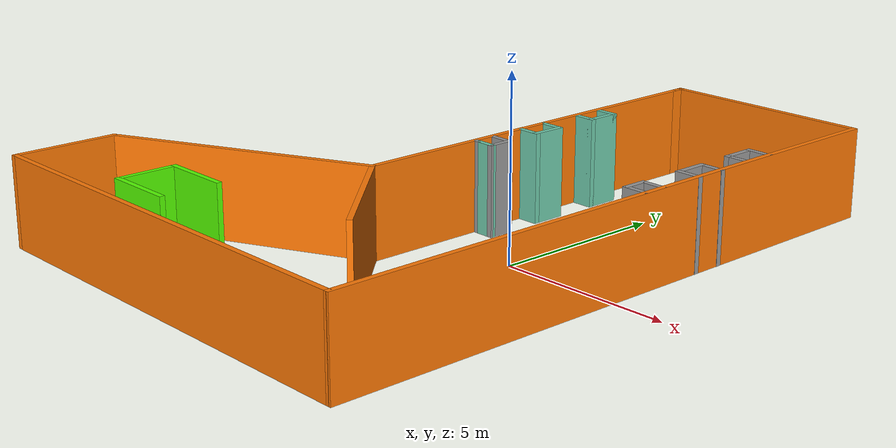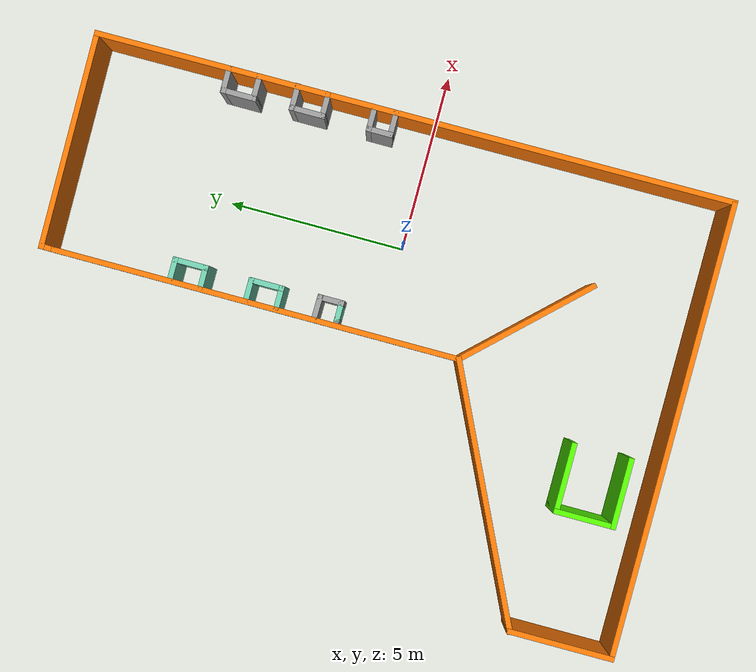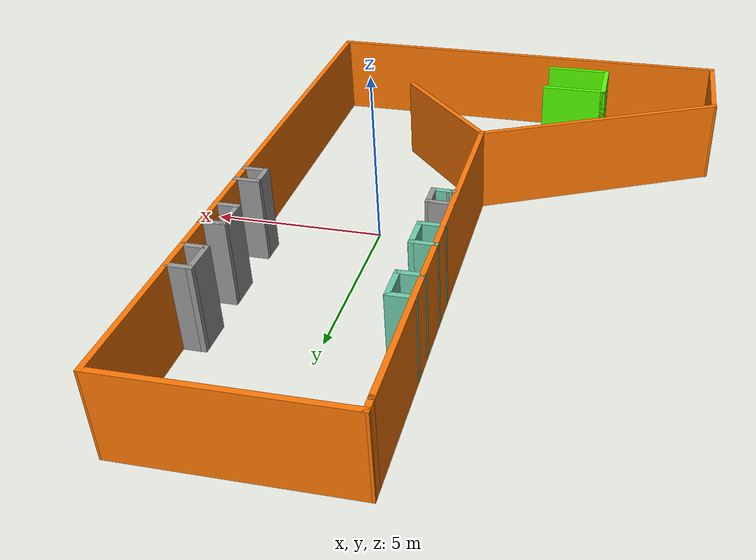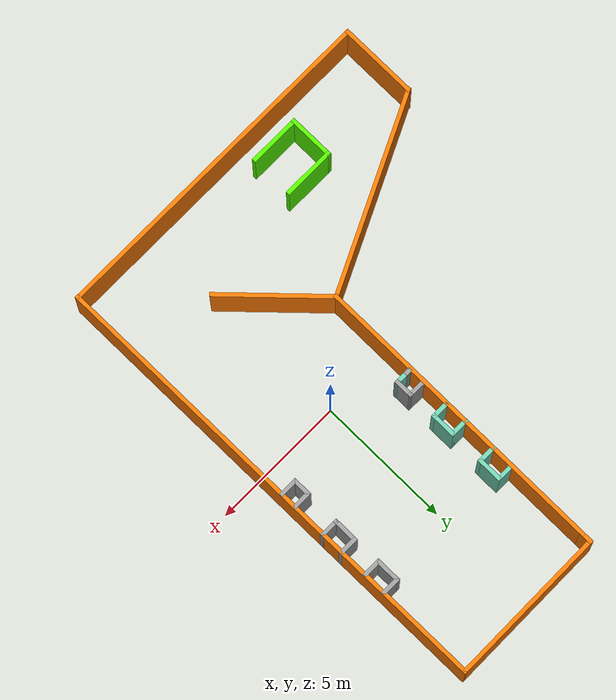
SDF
<?xml version='1.0'?>
<sdf version='1.7'>
  <model name='Second_Wrold'>
    <pose>-2.95303 0.559566 0 0 -0 0</pose>
    <link name='Wall_11'>
      <collision name='Wall_11_Collision'>
        <geometry>
          <box>
            <size>3 0.15 2.5</size>
          </box>
        </geometry>
        <pose>0 0 1.25 0 -0 0</pose>
      </collision>
      <visual name='Wall_11_Visual'>
        <pose>0 0 1.25 0 -0 0</pose>
        <geometry>
          <box>
            <size>3 0.15 2.5</size>
          </box>
        </geometry>
        <material>
          <script>
            <uri>file://media/materials/scripts/gazebo.material</uri>
            <name>Gazebo/Grey</name>
          </script>
          <ambient>0.996078 0.47451 0.0196078 1</ambient>
        </material>
        <meta>
          <layer>0</layer>
        </meta>
      </visual>
      <pose>-6.38061 -7.50015 0 0 -0 1.5708</pose>
    </link>
    <link name='Wall_12'>
      <collision name='Wall_12_Collision'>
        <geometry>
          <box>
            <size>7.64166 0.15 2.5</size>
          </box>
        </geometry>
        <pose>0 0 1.25 0 -0 0</pose>
      </collision>
      <visual name='Wall_12_Visual'>
        <pose>0 0 1.25 0 -0 0</pose>
        <geometry>
          <box>
            <size>7.64166 0.15 2.5</size>
          </box>
        </geometry>
        <material>
          <script>
            <uri>file://media/materials/scripts/gazebo.material</uri>
            <name>Gazebo/Grey</name>
          </script>
          <ambient>0.996078 0.47451 0.0196078 1</ambient>
        </material>
        <meta>
          <layer>0</layer>
        </meta>
      </visual>
      <pose>-3.00561 -4.45015 0 0 -0 0.448723</pose>
    </link>
    <link name='Wall_13'>
      <collision name='Wall_13_Collision'>
        <geometry>
          <box>
            <size>4.28793 0.15 2.5</size>
          </box>
        </geometry>
        <pose>0 0 1.25 0 -0 0</pose>
      </collision>
      <visual name='Wall_13_Visual'>
        <pose>0 0 1.25 0 -0 0</pose>
        <geometry>
          <box>
            <size>4.28793 0.15 2.5</size>
          </box>
        </geometry>
        <material>
          <script>
            <uri>file://media/materials/scripts/gazebo.material</uri>
            <name>Gazebo/Grey</name>
          </script>
          <ambient>0.996078 0.47451 0.0196078 1</ambient>
        </material>
        <meta>
          <layer>0</layer>
        </meta>
      </visual>
      <pose>1.79439 -4.32515 0 0 -0 -0.811034</pose>
    </link>
    <link name='Wall_16'>
      <collision name='Wall_16_Collision'>
        <geometry>
          <box>
            <size>0.75 0.15 2.5</size>
          </box>
        </geometry>
        <pose>0 0 1.25 0 -0 0</pose>
      </collision>
      <visual name='Wall_16_Visual'>
        <pose>0 0 1.25 0 -0 0</pose>
        <geometry>
          <box>
            <size>0.75 0.15 2.5</size>
          </box>
        </geometry>
        <material>
          <script>
            <uri>file://media/materials/scripts/gazebo.material</uri>
            <name>Gazebo/Grey</name>
          </script>
          <ambient>0.435294 0.796078 0.67451 1</ambient>
        </material>
        <meta>
          <layer>0</layer>
        </meta>
      </visual>
      <pose>0.668499 5.28654 0 0 -0 0</pose>
    </link>
    <link name='Wall_17'>
      <collision name='Wall_17_Collision'>
        <geometry>
          <box>
            <size>1 0.15 2.5</size>
          </box>
        </geometry>
        <pose>0 0 1.25 0 -0 0</pose>
      </collision>
      <visual name='Wall_17_Visual'>
        <pose>0 0 1.25 0 -0 0</pose>
        <geometry>
          <box>
            <size>1 0.15 2.5</size>
          </box>
        </geometry>
        <material>
          <script>
            <uri>file://media/materials/scripts/gazebo.material</uri>
            <name>Gazebo/Grey</name>
          </script>
          <ambient>0.435294 0.796078 0.67451 1</ambient>
        </material>
        <meta>
          <layer>0</layer>
        </meta>
      </visual>
      <pose>0.968499 4.86154 0 0 -0 -1.5708</pose>
    </link>
    <link name='Wall_18'>
      <collision name='Wall_18_Collision'>
        <geometry>
          <box>
            <size>0.75 0.15 2.5</size>
          </box>
        </geometry>
        <pose>0 0 1.25 0 -0 0</pose>
      </collision>
      <visual name='Wall_18_Visual'>
        <pose>0 0 1.25 0 -0 0</pose>
        <geometry>
          <box>
            <size>0.75 0.15 2.5</size>
          </box>
        </geometry>
        <material>
          <script>
            <uri>file://media/materials/scripts/gazebo.material</uri>
            <name>Gazebo/Grey</name>
          </script>
          <ambient>0.435294 0.796078 0.67451 1</ambient>
        </material>
        <meta>
          <layer>0</layer>
        </meta>
      </visual>
      <pose>0.668499 4.43654 0 0 -0 3.14159</pose>
    </link>
    <link name='Wall_20'>
      <collision name='Wall_20_Collision'>
        <geometry>
          <box>
            <size>0.75 0.15 2.5</size>
          </box>
        </geometry>
        <pose>0 0 1.25 0 -0 0</pose>
      </collision>
      <visual name='Wall_20_Visual'>
        <pose>0 0 1.25 0 -0 0</pose>
        <geometry>
          <box>
            <size>0.75 0.15 2.5</size>
          </box>
        </geometry>
        <material>
          <script>
            <uri>file://media/materials/scripts/gazebo.material</uri>
            <name>Gazebo/Grey</name>
          </script>
          <ambient>0.435294 0.796078 0.67451 1</ambient>
        </material>
        <meta>
          <layer>0</layer>
        </meta>
      </visual>
      <pose>0.668499 3.15852 0 0 -0 0</pose>
    </link>
    <link name='Wall_21'>
      <collision name='Wall_21_Collision'>
        <geometry>
          <box>
            <size>1 0.15 2.5</size>
          </box>
        </geometry>
        <pose>0 0 1.25 0 -0 0</pose>
      </collision>
      <visual name='Wall_21_Visual'>
        <pose>0 0 1.25 0 -0 0</pose>
        <geometry>
          <box>
            <size>1 0.15 2.5</size>
          </box>
        </geometry>
        <material>
          <script>
            <uri>file://media/materials/scripts/gazebo.material</uri>
            <name>Gazebo/Grey</name>
          </script>
          <ambient>0.435294 0.796078 0.67451 1</ambient>
        </material>
        <meta>
          <layer>0</layer>
        </meta>
      </visual>
      <pose>0.968499 2.73352 0 0 -0 -1.5708</pose>
    </link>
    <link name='Wall_22'>
      <collision name='Wall_22_Collision'>
        <geometry>
          <box>
            <size>0.75 0.15 2.5</size>
          </box>
        </geometry>
        <pose>0 0 1.25 0 -0 0</pose>
      </collision>
      <visual name='Wall_22_Visual'>
        <pose>0 0 1.25 0 -0 0</pose>
        <geometry>
          <box>
            <size>0.75 0.15 2.5</size>
          </box>
        </geometry>
        <material>
          <script>
            <uri>file://media/materials/scripts/gazebo.material</uri>
            <name>Gazebo/Grey</name>
          </script>
          <ambient>0.435294 0.796078 0.67451 1</ambient>
        </material>
        <meta>
          <layer>0</layer>
        </meta>
      </visual>
      <pose>0.668499 2.30852 0 0 -0 3.14159</pose>
    </link>
    <link name='Wall_24'>
      <collision name='Wall_24_Collision'>
        <geometry>
          <box>
            <size>0.788168 0.15 2.5</size>
          </box>
        </geometry>
        <pose>0 0 1.25 0 -0 0</pose>
      </collision>
      <visual name='Wall_24_Visual'>
        <pose>0 0 1.25 0 -0 0</pose>
        <geometry>
          <box>
            <size>0.788168 0.15 2.5</size>
          </box>
        </geometry>
        <material>
          <script>
            <uri>file://media/materials/scripts/gazebo.material</uri>
            <name>Gazebo/Grey</name>
          </script>
          <ambient>1 1 1 1</ambient>
        </material>
        <meta>
          <layer>0</layer>
        </meta>
      </visual>
      <pose>0.691048 1.24516 0 0 -0 -0.017475</pose>
    </link>
    <link name='Wall_25'>
      <collision name='Wall_25_Collision'>
        <geometry>
          <box>
            <size>0.75 0.15 2.5</size>
          </box>
        </geometry>
        <pose>0 0 1.25 0 -0 0</pose>
      </collision>
      <visual name='Wall_25_Visual'>
        <pose>0 0 1.25 0 -0 0</pose>
        <geometry>
          <box>
            <size>0.75 0.15 2.5</size>
          </box>
        </geometry>
        <material>
          <script>
            <uri>file://media/materials/scripts/gazebo.material</uri>
            <name>Gazebo/Grey</name>
          </script>
          <ambient>1 1 1 1</ambient>
        </material>
        <meta>
          <layer>0</layer>
        </meta>
      </visual>
      <pose>1.01008 0.939588 0 0 -0 -1.5708</pose>
    </link>
    <link name='Wall_26'>
      <collision name='Wall_26_Collision'>
        <geometry>
          <box>
            <size>0.594788 0.15 2.5</size>
          </box>
        </geometry>
        <pose>0 0 1.25 0 -0 0</pose>
      </collision>
      <visual name='Wall_26_Visual'>
        <pose>0 0 1.25 0 -0 0</pose>
        <geometry>
          <box>
            <size>0.594788 0.15 2.5</size>
          </box>
        </geometry>
        <material>
          <script>
            <uri>file://media/materials/scripts/gazebo.material</uri>
            <name>Gazebo/Grey</name>
          </script>
          <ambient>0.435294 0.796078 0.67451 1</ambient>
        </material>
        <meta>
          <layer>0</layer>
        </meta>
      </visual>
      <pose>0.78769 0.642376 0 0 -0 3.13741</pose>
    </link>
    <link name='Wall_27'>
      <collision name='Wall_27_Collision'>
        <geometry>
          <box>
            <size>0.25 0.15 2.5</size>
          </box>
        </geometry>
        <pose>0 0 1.25 0 -0 0</pose>
      </collision>
      <visual name='Wall_27_Visual'>
        <pose>0 0 1.25 0 -0 0</pose>
        <geometry>
          <box>
            <size>0.25 0.15 2.5</size>
          </box>
        </geometry>
        <material>
          <script>
            <uri>file://media/materials/scripts/gazebo.material</uri>
            <name>Gazebo/Grey</name>
          </script>
          <ambient>1 1 1 1</ambient>
        </material>
        <meta>
          <layer>0</layer>
        </meta>
      </visual>
      <pose>0.515298 0.643305 0 0 -0 3.14159</pose>
    </link>
    <link name='Wall_3'>
      <collision name='Wall_3_Collision'>
        <geometry>
          <box>
            <size>12.8828 0.15 2.5</size>
          </box>
        </geometry>
        <pose>0 0 1.25 0 -0 0</pose>
      </collision>
      <visual name='Wall_3_Visual'>
        <pose>0 0 1.25 0 -0 0</pose>
        <geometry>
          <box>
            <size>12.8828 0.15 2.5</size>
          </box>
        </geometry>
        <material>
          <script>
            <uri>file://media/materials/scripts/gazebo.material</uri>
            <name>Gazebo/Grey</name>
          </script>
          <ambient>0.996078 0.47451 0.0196078 1</ambient>
        </material>
        <meta>
          <layer>0</layer>
        </meta>
      </visual>
      <pose>-0.014214 -8.92515 0 0 -0 0</pose>
    </link>
    <link name='Wall_31'>
      <collision name='Wall_31_Collision'>
        <geometry>
          <box>
            <size>2 0.15 2.5</size>
          </box>
        </geometry>
        <pose>0 0 1.25 0 -0 0</pose>
      </collision>
      <visual name='Wall_31_Visual'>
        <pose>0 0 1.25 0 -0 0</pose>
        <geometry>
          <box>
            <size>2 0.15 2.5</size>
          </box>
        </geometry>
        <material>
          <script>
            <uri>file://media/materials/scripts/gazebo.material</uri>
            <name>Gazebo/Grey</name>
          </script>
          <ambient>0.333333 1 0 1</ambient>
        </material>
        <meta>
          <layer>0</layer>
        </meta>
      </visual>
      <pose>-1.99025 -8.04068 0 0 -0 0</pose>
    </link>
    <link name='Wall_34'>
      <collision name='Wall_34_Collision'>
        <geometry>
          <box>
            <size>1.75 0.15 2.5</size>
          </box>
        </geometry>
        <pose>0 0 1.25 0 -0 0</pose>
      </collision>
      <visual name='Wall_34_Visual'>
        <pose>0 0 1.25 0 -0 0</pose>
        <geometry>
          <box>
            <size>1.75 0.15 2.5</size>
          </box>
        </geometry>
        <material>
          <script>
            <uri>file://media/materials/scripts/gazebo.material</uri>
            <name>Gazebo/Grey</name>
          </script>
          <ambient>0.333333 1 0 1</ambient>
        </material>
        <meta>
          <layer>0</layer>
        </meta>
      </visual>
      <pose>-2.91525 -7.24068 0 0 -0 1.5708</pose>
    </link>
    <link name='Wall_35'>
      <collision name='Wall_35_Collision'>
        <geometry>
          <box>
            <size>2 0.15 2.5</size>
          </box>
        </geometry>
        <pose>0 0 1.25 0 -0 0</pose>
      </collision>
      <visual name='Wall_35_Visual'>
        <pose>0 0 1.25 0 -0 0</pose>
        <geometry>
          <box>
            <size>2 0.15 2.5</size>
          </box>
        </geometry>
        <material>
          <script>
            <uri>file://media/materials/scripts/gazebo.material</uri>
            <name>Gazebo/Grey</name>
          </script>
          <ambient>0.333333 1 0 1</ambient>
        </material>
        <meta>
          <layer>0</layer>
        </meta>
      </visual>
      <pose>-1.99025 -6.44068 0 0 -0 0</pose>
    </link>
    <link name='Wall_4'>
      <collision name='Wall_4_Collision'>
        <geometry>
          <box>
            <size>18.0002 0.15 2.5</size>
          </box>
        </geometry>
        <pose>0 0 1.25 0 -0 0</pose>
      </collision>
      <visual name='Wall_4_Visual'>
        <pose>0 0 1.25 0 -0 0</pose>
        <geometry>
          <box>
            <size>18.0002 0.15 2.5</size>
          </box>
        </geometry>
        <material>
          <script>
            <uri>file://media/materials/scripts/gazebo.material</uri>
            <name>Gazebo/Grey</name>
          </script>
          <ambient>0.996078 0.47451 0.0196078 1</ambient>
        </material>
        <meta>
          <layer>0</layer>
        </meta>
      </visual>
      <pose>6.36493 -0.000147 0 0 -0 1.57533</pose>
    </link>
    <link name='Wall_40'>
      <collision name='Wall_40_Collision'>
        <geometry>
          <box>
            <size>0.75 0.15 2.5</size>
          </box>
        </geometry>
        <pose>0 0 1.25 0 -0 0</pose>
      </collision>
      <visual name='Wall_40_Visual'>
        <pose>0 0 1.25 0 -0 0</pose>
        <geometry>
          <box>
            <size>0.75 0.15 2.5</size>
          </box>
        </geometry>
        <material>
          <script>
            <uri>file://media/materials/scripts/gazebo.material</uri>
            <name>Gazebo/Grey</name>
          </script>
          <ambient>1 1 1 1</ambient>
        </material>
        <meta>
          <layer>0</layer>
        </meta>
      </visual>
      <pose>6.02791 5.23177 0 0 -0 3.14159</pose>
    </link>
    <link name='Wall_41'>
      <collision name='Wall_41_Collision'>
        <geometry>
          <box>
            <size>1 0.15 2.5</size>
          </box>
        </geometry>
        <pose>0 0 1.25 0 -0 0</pose>
      </collision>
      <visual name='Wall_41_Visual'>
        <pose>0 0 1.25 0 -0 0</pose>
        <geometry>
          <box>
            <size>1 0.15 2.5</size>
          </box>
        </geometry>
        <material>
          <script>
            <uri>file://media/materials/scripts/gazebo.material</uri>
            <name>Gazebo/Grey</name>
          </script>
          <ambient>1 1 1 1</ambient>
        </material>
        <meta>
          <layer>0</layer>
        </meta>
      </visual>
      <pose>5.72791 4.80678 0 0 -0 -1.5708</pose>
    </link>
    <link name='Wall_42'>
      <collision name='Wall_42_Collision'>
        <geometry>
          <box>
            <size>0.75 0.15 2.5</size>
          </box>
        </geometry>
        <pose>0 0 1.25 0 -0 0</pose>
      </collision>
      <visual name='Wall_42_Visual'>
        <pose>0 0 1.25 0 -0 0</pose>
        <geometry>
          <box>
            <size>0.75 0.15 2.5</size>
          </box>
        </geometry>
        <material>
          <script>
            <uri>file://media/materials/scripts/gazebo.material</uri>
            <name>Gazebo/Grey</name>
          </script>
          <ambient>1 1 1 1</ambient>
        </material>
        <meta>
          <layer>0</layer>
        </meta>
      </visual>
      <pose>6.02791 4.38178 0 0 -0 0</pose>
    </link>
    <link name='Wall_44'>
      <collision name='Wall_44_Collision'>
        <geometry>
          <box>
            <size>0.75 0.15 2.5</size>
          </box>
        </geometry>
        <pose>0 0 1.25 0 -0 0</pose>
      </collision>
      <visual name='Wall_44_Visual'>
        <pose>0 0 1.25 0 -0 0</pose>
        <geometry>
          <box>
            <size>0.75 0.15 2.5</size>
          </box>
        </geometry>
        <material>
          <script>
            <uri>file://media/materials/scripts/gazebo.material</uri>
            <name>Gazebo/Grey</name>
          </script>
          <ambient>1 1 1 1</ambient>
        </material>
        <meta>
          <layer>0</layer>
        </meta>
      </visual>
      <pose>6.05774 3.31267 0 0 -0 3.14159</pose>
    </link>
    <link name='Wall_45'>
      <collision name='Wall_45_Collision'>
        <geometry>
          <box>
            <size>1 0.15 2.5</size>
          </box>
        </geometry>
        <pose>0 0 1.25 0 -0 0</pose>
      </collision>
      <visual name='Wall_45_Visual'>
        <pose>0 0 1.25 0 -0 0</pose>
        <geometry>
          <box>
            <size>1 0.15 2.5</size>
          </box>
        </geometry>
        <material>
          <script>
            <uri>file://media/materials/scripts/gazebo.material</uri>
            <name>Gazebo/Grey</name>
          </script>
          <ambient>1 1 1 1</ambient>
        </material>
        <meta>
          <layer>0</layer>
        </meta>
      </visual>
      <pose>5.75774 2.88767 0 0 -0 -1.5708</pose>
    </link>
    <link name='Wall_46'>
      <collision name='Wall_46_Collision'>
        <geometry>
          <box>
            <size>0.75 0.15 2.5</size>
          </box>
        </geometry>
        <pose>0 0 1.25 0 -0 0</pose>
      </collision>
      <visual name='Wall_46_Visual'>
        <pose>0 0 1.25 0 -0 0</pose>
        <geometry>
          <box>
            <size>0.75 0.15 2.5</size>
          </box>
        </geometry>
        <material>
          <script>
            <uri>file://media/materials/scripts/gazebo.material</uri>
            <name>Gazebo/Grey</name>
          </script>
          <ambient>1 1 1 1</ambient>
        </material>
        <meta>
          <layer>0</layer>
        </meta>
      </visual>
      <pose>6.05774 2.46267 0 0 -0 0</pose>
    </link>
    <link name='Wall_48'>
      <collision name='Wall_48_Collision'>
        <geometry>
          <box>
            <size>0.75 0.15 2.5</size>
          </box>
        </geometry>
        <pose>0 0 1.25 0 -0 0</pose>
      </collision>
      <visual name='Wall_48_Visual'>
        <pose>0 0 1.25 0 -0 0</pose>
        <geometry>
          <box>
            <size>0.75 0.15 2.5</size>
          </box>
        </geometry>
        <material>
          <script>
            <uri>file://media/materials/scripts/gazebo.material</uri>
            <name>Gazebo/Grey</name>
          </script>
          <ambient>1 1 1 1</ambient>
        </material>
        <meta>
          <layer>0</layer>
        </meta>
      </visual>
      <pose>6.04779 1.15493 0 0 -0 3.14159</pose>
    </link>
    <link name='Wall_49'>
      <collision name='Wall_49_Collision'>
        <geometry>
          <box>
            <size>0.75 0.15 2.5</size>
          </box>
        </geometry>
        <pose>0 0 1.25 0 -0 0</pose>
      </collision>
      <visual name='Wall_49_Visual'>
        <pose>0 0 1.25 0 -0 0</pose>
        <geometry>
          <box>
            <size>0.75 0.15 2.5</size>
          </box>
        </geometry>
        <material>
          <script>
            <uri>file://media/materials/scripts/gazebo.material</uri>
            <name>Gazebo/Grey</name>
          </script>
          <ambient>1 1 1 1</ambient>
        </material>
        <meta>
          <layer>0</layer>
        </meta>
      </visual>
      <pose>5.74779 0.854926 0 0 -0 -1.5708</pose>
    </link>
    <link name='Wall_50'>
      <collision name='Wall_50_Collision'>
        <geometry>
          <box>
            <size>0.75 0.15 2.5</size>
          </box>
        </geometry>
        <pose>0 0 1.25 0 -0 0</pose>
      </collision>
      <visual name='Wall_50_Visual'>
        <pose>0 0 1.25 0 -0 0</pose>
        <geometry>
          <box>
            <size>0.75 0.15 2.5</size>
          </box>
        </geometry>
        <material>
          <script>
            <uri>file://media/materials/scripts/gazebo.material</uri>
            <name>Gazebo/Grey</name>
          </script>
          <ambient>1 1 1 1</ambient>
        </material>
        <meta>
          <layer>0</layer>
        </meta>
      </visual>
      <pose>6.04779 0.554926 0 0 -0 0</pose>
    </link>
    <link name='Wall_7'>
      <collision name='Wall_7_Collision'>
        <geometry>
          <box>
            <size>11.5 0.15 2.5</size>
          </box>
        </geometry>
        <pose>0 0 1.25 0 -0 0</pose>
      </collision>
      <visual name='Wall_7_Visual'>
        <pose>0 0 1.25 0 -0 0</pose>
        <geometry>
          <box>
            <size>11.5 0.15 2.5</size>
          </box>
        </geometry>
        <material>
          <script>
            <uri>file://media/materials/scripts/gazebo.material</uri>
            <name>Gazebo/Grey</name>
          </script>
          <ambient>0.996078 0.47451 0.0196078 1</ambient>
        </material>
        <meta>
          <layer>0</layer>
        </meta>
      </visual>
      <pose>0.36939 2.84985 0 0 -0 1.5708</pose>
    </link>
    <link name='Wall_8'>
      <collision name='Wall_8_Collision'>
        <geometry>
          <box>
            <size>0.5 0.15 2.5</size>
          </box>
        </geometry>
        <pose>0 0 1.25 0 -0 0</pose>
      </collision>
      <visual name='Wall_8_Visual'>
        <pose>0 0 1.25 0 -0 0</pose>
        <geometry>
          <box>
            <size>0.5 0.15 2.5</size>
          </box>
        </geometry>
        <material>
          <script>
            <uri>file://media/materials/scripts/gazebo.material</uri>
            <name>Gazebo/Grey</name>
          </script>
          <ambient>0.996078 0.47451 0.0196078 1</ambient>
        </material>
        <meta>
          <layer>0</layer>
        </meta>
      </visual>
      <pose>0.36939 8.69985 0 0 -0 1.5708</pose>
    </link>
    <link name='Wall_9'>
      <collision name='Wall_9_Collision'>
        <geometry>
          <box>
            <size>6.05209 0.15 2.5</size>
          </box>
        </geometry>
        <pose>0 0 1.25 0 -0 0</pose>
      </collision>
      <visual name='Wall_9_Visual'>
        <pose>0 0 1.25 0 -0 0</pose>
        <geometry>
          <box>
            <size>6.05209 0.15 2.5</size>
          </box>
        </geometry>
        <material>
          <script>
            <uri>file://media/materials/scripts/gazebo.material</uri>
            <name>Gazebo/Grey</name>
          </script>
          <ambient>0.996078 0.47451 0.0196078 1</ambient>
        </material>
        <meta>
          <layer>0</layer>
        </meta>
      </visual>
      <pose>3.32033 8.89985 0 0 -0 0.008472</pose>
    </link>
    <static>1</static>
  </model>
</sdf>
